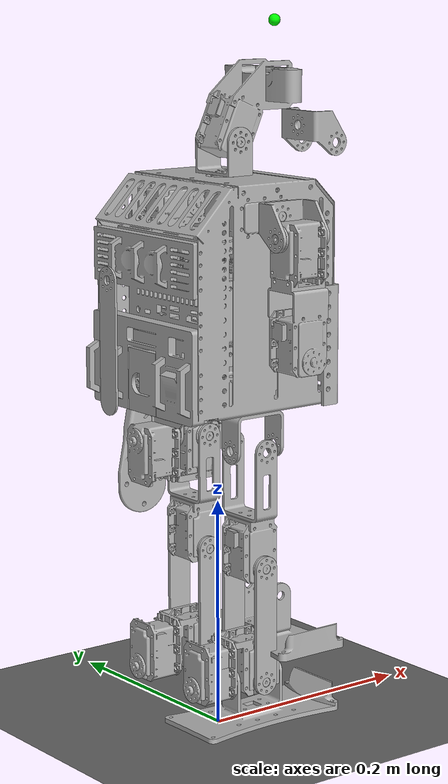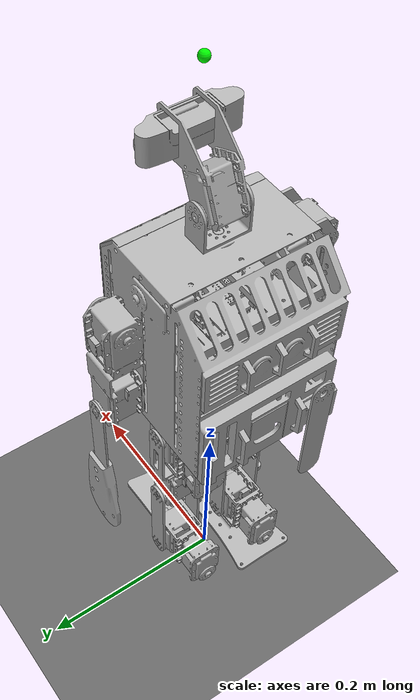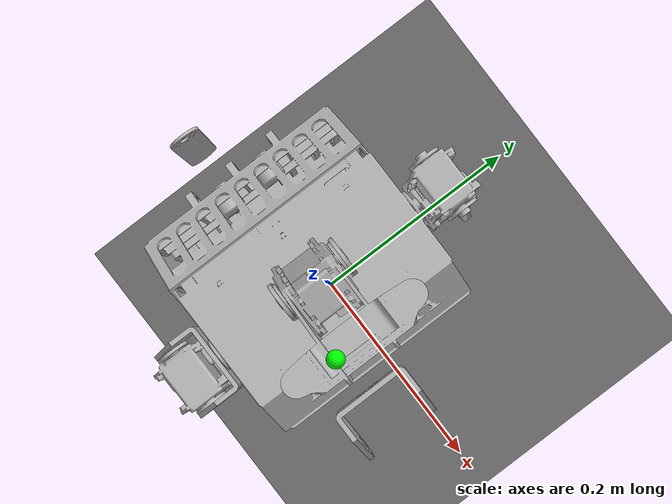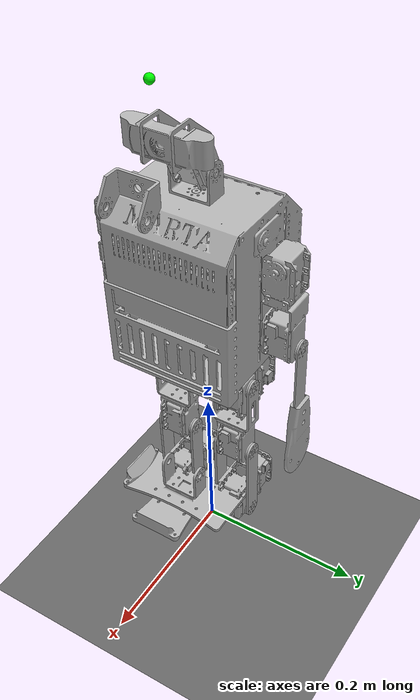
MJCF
<mujoco model="martha">
  <option iterations="50" timestep="0.001" solver="PGS" gravity="0 0 -9.81" />

  <compiler angle="radian" meshdir="meshes" eulerseq="zyx" autolimits="true" />

  <default>
    <joint limited="true" damping="0.01" armature="0.01" frictionloss="0.01" />
    <geom condim="4" contype="1" conaffinity="15" friction="0.9 0.2 0.2" solref="0.001 2" />
    <motor ctrllimited="true" />
    <equality solref="0.001 2" />
    <default class="visualgeom">
      <geom material="visualgeom" condim="1" contype="0" conaffinity="0" />
    </default>
  </default>

  <asset>
    <mesh name="base_link" file="base_link.stl" scale="0.001 0.001 0.001" />
    <mesh name="r_shoulder_1" file="r_shoulder_1.stl" scale="0.001 0.001 0.001" />
    <mesh name="l_shoulder_1" file="l_shoulder_1.stl" scale="0.001 0.001 0.001" />
    <mesh name="r_arm_1" file="r_arm_1.stl" scale="0.001 0.001 0.001" />
    <mesh name="l_arm_1" file="l_arm_1.stl" scale="0.001 0.001 0.001" />
    <mesh name="neck_1" file="neck_1.stl" scale="0.001 0.001 0.001" />
    <mesh name="head_1" file="head_1.stl" scale="0.001 0.001 0.001" />
    <mesh name="l_hand_1" file="l_hand_1.stl" scale="0.001 0.001 0.001" />
    <mesh name="r_hand_1" file="r_hand_1.stl" scale="0.001 0.001 0.001" />
    <mesh name="l_hip_1" file="l_hip_1.stl" scale="0.001 0.001 0.001" />
    <mesh name="r_hip_1" file="r_hip_1.stl" scale="0.001 0.001 0.001" />
    <mesh name="l_waist_1" file="l_waist_1.stl" scale="0.001 0.001 0.001" />
    <mesh name="r_waist_1" file="r_waist_1.stl" scale="0.001 0.001 0.001" />
    <mesh name="r_thigh_1" file="r_thigh_1.stl" scale="0.001 0.001 0.001" />
    <mesh name="l_thigh_1" file="l_thigh_1.stl" scale="0.001 0.001 0.001" />
    <mesh name="l_shin_1" file="l_shin_1.stl" scale="0.001 0.001 0.001" />
    <mesh name="r_shin_1" file="r_shin_1.stl" scale="0.001 0.001 0.001" />
    <mesh name="r_ankle_1" file="r_ankle_1.stl" scale="0.001 0.001 0.001" />
    <mesh name="l_ankle_1" file="l_ankle_1.stl" scale="0.001 0.001 0.001" />
    <mesh name="l_feet_1" file="l_feet_1.stl" scale="0.001 0.001 0.001" />
    <mesh name="r_feet_1" file="r_feet_1.stl" scale="0.001 0.001 0.001" />
    <texture name="texplane" type="2d" builtin="checker" rgb1=".0 .0 .0" rgb2=".8 .8 .8" width="100" height="100" />
    <material name="matplane" reflectance="0." texture="texplane" texrepeat="1 1" texuniform="true" />
    <material name="visualgeom" rgba="0.5 0.9 0.2 1" />
  </asset>

  <worldbody>
    <light directional="true" diffuse="0.4 0.4 0.4" specular="0.1 0.1 0.1" pos="0 0 5.0" dir="0 0 -1" castshadow="false" />
    <light directional="true" diffuse="0.6 0.6 0.6" specular="0.2 0.2 0.2" pos="0 0 4" dir="0 0 -1" />
    <geom name="ground" type="plane" pos="0 0 0" size="100 100 0.001" quat="1 0 0 0" material="matplane" condim="3" conaffinity="15" />
    <camera name="fixed" pos="0 -3.0 0.8566949259501146" xyaxes="1 0 0 0 0 1" />
    <camera name="track" mode="trackcom" pos="0 -3.0 0.8566949259501146" xyaxes="1 0 0 0 0 1" />
    <camera name="head_camera" site="camera_site" mode="fixed" resolution="640 480" fovy="80" near="0.02" far="300"/>
    <body name="root" pos="0 0 0.35669492595011465" quat="1 0 0 0">
      <freejoint name="root" />
      <site name="imu" size="0.01" pos="0 0 0" />
      <geom type="mesh" rgba="0.7 0.7 0.7 1" mesh="base_link" contype="1" conaffinity="0" density="0" group="1" class="visualgeom" />
      <geom type="mesh" rgba="0.7 0.7 0.7 1" mesh="base_link" />
      <body name="r_shoulder_1" pos="-0.075737 -0.013299 0.16273">
        <inertial pos="-0.0103128 1.00656e-07 -0.00339218" quat="0.653281 0.653281 0.270598 -0.270598" mass="0.0616086" diaginertia="3.1e-05 2.7e-05 1.1e-05" />
        <joint name="r_sho_pitch_link" pos="0 0 0" axis="-1 0 0" range="-3.14159 3.14159" actuatorfrcrange="-1000 1000" />
        <geom pos="0.075737 0.013299 -0.16273" quat="1 0 0 0" type="mesh" rgba="0.7 0.7 0.7 1" mesh="r_shoulder_1" contype="1" conaffinity="0" density="0" group="1" class="visualgeom" />
        <geom type="mesh" rgba="0.7 0.7 0.7 1" mesh="r_shoulder_1" pos="0.075737 0.013299 -0.16273" quat="1 0 0 0" />
        <body name="r_arm_1" pos="-0.023 0.021 -0.0145">
          <inertial pos="1.93472e-05 -0.0207344 -0.0491273" quat="0.382682 -0.00248387 0.00102887 0.923876" mass="0.202062" diaginertia="0.000302008 0.000302 3.89924e-05" />
          <joint name="r_sho_roll_link" pos="0 0 0" axis="0 1 0" range="-3.14159 3.14159" actuatorfrcrange="-1000 1000" />
          <geom pos="0.098737 -0.007701 -0.14823" quat="1 0 0 0" type="mesh" rgba="0.7 0.7 0.7 1" mesh="r_arm_1" contype="1" conaffinity="0" density="0" group="1" class="visualgeom" />
          <geom type="mesh" rgba="0.7 0.7 0.7 1" mesh="r_arm_1" pos="0.098737 -0.007701 -0.14823" quat="1 0 0 0" />
          <body name="r_hand_1" pos="-0.02075 -0.02076 -0.0996">
            <inertial pos="-0.00100024 1.00656e-07 -0.0515581" mass="0.0210013" diaginertia="2.4e-05 2.3e-05 1e-06" />
            <joint name="r_el_link" pos="0 0 0" axis="1 0 0" range="-3.14159 3.14159" actuatorfrcrange="-1000 1000" />
            <geom pos="0.119487 0.013059 -0.04863" type="mesh" rgba="0.7 0.7 0.7 1" mesh="r_hand_1" contype="1" conaffinity="0" density="0" group="1" class="visualgeom" />
            <geom type="mesh" rgba="0.7 0.7 0.7 1" mesh="r_hand_1" pos="0.119487 0.013059 -0.04863" />
          </body>
        </body>
      </body>
      <body name="l_shoulder_1" pos="0.075763 -0.013299 0.16273">
        <inertial pos="0.0103123 1.00656e-07 -0.00339218" quat="0.653281 0.653281 -0.270598 0.270598" mass="0.0616086" diaginertia="3.1e-05 2.7e-05 1.1e-05" />
        <joint name="l_sho_pitch_link" pos="0 0 0" axis="1 0 0" range="-3.14159 3.14159" actuatorfrcrange="-1000 1000" />
        <geom pos="-0.075763 0.013299 -0.16273" quat="1 0 0 0" type="mesh" rgba="0.7 0.7 0.7 1" mesh="l_shoulder_1" contype="1" conaffinity="0" density="0" group="1" class="visualgeom" />
        <geom type="mesh" rgba="0.7 0.7 0.7 1" mesh="l_shoulder_1" pos="-0.075763 0.013299 -0.16273" quat="1 0 0 0" />
        <body name="l_arm_1" pos="0.023 0.021 -0.0145">
          <inertial pos="1.93472e-05 -0.0207344 -0.0491273" quat="0.382682 -0.00248387 0.00102887 0.923876" mass="0.202062" diaginertia="0.000302008 0.000302 3.89924e-05" />
          <joint name="l_sho_roll_link" pos="0 0 0" axis="0 1 0" range="-3.14159 3.14159" actuatorfrcrange="-1000 1000" />
          <geom pos="-0.098763 -0.007701 -0.14823" quat="1 0 0 0" type="mesh" rgba="0.7 0.7 0.7 1" mesh="l_arm_1" contype="1" conaffinity="0" density="0" group="1" class="visualgeom" />
          <geom type="mesh" rgba="0.7 0.7 0.7 1" mesh="l_arm_1" pos="-0.098763 -0.007701 -0.14823" quat="1 0 0 0" />
          <body name="l_hand_1" pos="0.02075 -0.02076 -0.0996">
            <inertial pos="0.000999758 1.00656e-07 -0.0515581" mass="0.0210013" diaginertia="2.4e-05 2.3e-05 1e-06" />
            <joint name="l_el_link" pos="0 0 0" axis="1 0 0" range="-3.14159 3.14159" actuatorfrcrange="-1000 1000" />
            <geom pos="-0.119513 0.013059 -0.04863" type="mesh" rgba="0.7 0.7 0.7 1" mesh="l_hand_1" contype="1" conaffinity="0" density="0" group="1" class="visualgeom" />
            <geom type="mesh" rgba="0.7 0.7 0.7 1" mesh="l_hand_1" pos="-0.119513 0.013059 -0.04863" />
          </body>
        </body>
      </body>
      <body name="neck_1" pos="1.3e-05 -0.013499 0.191301">
        <inertial pos="-2.57555e-07 1.00656e-07 0.0118456" quat="0.5 0.5 0.5 0.5" mass="0.0200002" diaginertia="1e-05 8e-06 4e-06" />
        <joint name="head_pan_link" pos="0 0 0" axis="0 0 1" range="-3.14159 3.14159" actuatorfrcrange="-1000 1000" />
        <geom pos="-1.3e-05 0.013499 -0.191301" quat="1 0 0 0" type="mesh" rgba="0.7 0.7 0.7 1" mesh="neck_1" contype="1" conaffinity="0" density="0" group="1" class="visualgeom" />
        <geom type="mesh" rgba="0.7 0.7 0.7 1" mesh="neck_1" pos="-1.3e-05 0.013499 -0.191301" quat="1 0 0 0" />
        <site
        name="camera_site"
        pos="0.05 0 0.06"
        quat="1 0 0 0"
        size="0.005"
        rgba="0 1 0 1"/>
        <body name="head_1" pos="0.021 0 0.029">
          <inertial pos="-0.0207259 -0.0231953 0.0274494" quat="0.651578 0.274675 -0.274675 0.651578" mass="0.162245" diaginertia="0.000190519 0.000142 7.04813e-05" />
          <joint name="head_tilt_link" pos="0 0 0" axis="1 0 0" range="-3.14159 3.14159" actuatorfrcrange="-1000 1000" />
          <geom pos="-0.021013 0.013499 -0.220301" quat="1 0 0 0" type="mesh" rgba="0.7 0.7 0.7 1" mesh="head_1" contype="1" conaffinity="0" density="0" group="1" class="visualgeom" />
          <geom type="mesh" rgba="0.7 0.7 0.7 1" mesh="head_1" pos="-0.021013 0.013499 -0.220301" quat="1 0 0 0" />
        </body>
      </body>
      <body name="l_hip_1" pos="0.040013 -0.013499 -0.00575">
        <inertial pos="-2.42034e-07 0.00145206 -0.0157858" quat="0.771073 0.636747 0 0" mass="0.0222589" diaginertia="1.3e-05 1.01926e-05 4.80742e-06" />
        <joint name="l_hip_yaw_link" pos="0 0 0" axis="0 0 -1" range="-3.14159 3.14159" actuatorfrcrange="-1000 1000" />
        <geom pos="-0.040013 0.013499 0.00575" quat="1 0 0 0" type="mesh" rgba="0.7 0.7 0.7 1" mesh="l_hip_1" contype="1" conaffinity="0" density="0" group="1" class="visualgeom" />
        <geom type="mesh" rgba="0.7 0.7 0.7 1" mesh="l_hip_1" pos="-0.040013 0.013499 0.00575" quat="1 0 0 0" />
        <body name="l_waist_1" pos="0 0.02215 -0.034">
          <inertial pos="1.35613e-05 -0.001402 -0.0123778" quat="0.707107 0.707107 0 0" mass="0.187567" diaginertia="0.000141 0.000124 5.5e-05" />
          <joint name="l_hip_roll_link" pos="0 0 0" axis="0 -1 0" range="-3.14159 3.14159" actuatorfrcrange="-1000 1000" />
          <geom pos="-0.040013 -0.008651 0.03975" quat="1 0 0 0" type="mesh" rgba="0.7 0.7 0.7 1" mesh="l_waist_1" contype="1" conaffinity="0" density="0" group="1" class="visualgeom" />
          <geom type="mesh" rgba="0.7 0.7 0.7 1" mesh="l_waist_1" pos="-0.040013 -0.008651 0.03975" quat="1 0 0 0" />
          <body name="l_thigh_1" pos="-0.0226 -0.01945 0">
            <inertial pos="0.0230774 1.03185e-07 -0.0755478" quat="0.707107 0 0 0.707107" mass="0.115577" diaginertia="0.000113 9.9e-05 2.7e-05" />
            <joint name="l_hip_pitch_link" pos="0 0 0" axis="-1 0 0" range="-3.14159 3.14159" actuatorfrcrange="-1000 1000" />
            <geom pos="-0.017413 0.010799 0.03975" quat="1 0 0 0" type="mesh" rgba="0.7 0.7 0.7 1" mesh="l_thigh_1" contype="1" conaffinity="0" density="0" group="1" class="visualgeom" />
            <geom type="mesh" rgba="0.7 0.7 0.7 1" mesh="l_thigh_1" pos="-0.017413 0.010799 0.03975" quat="1 0 0 0" />
            <body name="l_shin_1" pos="0.00235 0 -0.1005">
              <inertial pos="0.0207498 -0.00324835 -0.0557923" quat="0.706925 0.0160252 -0.0160252 0.706925" mass="0.035816" diaginertia="6.20907e-05 4.9e-05 1.79093e-05" />
              <joint name="l_knee_link" pos="0 0 0" axis="1 0 0" range="-3.14159 3.14159" actuatorfrcrange="-1000 1000" />
              <geom pos="-0.019763 0.010799 0.14025" quat="1 0 0 0" type="mesh" rgba="0.7 0.7 0.7 1" mesh="l_shin_1" contype="1" conaffinity="0" density="0" group="1" class="visualgeom" />
              <geom type="mesh" rgba="0.7 0.7 0.7 1" mesh="l_shin_1" pos="-0.019763 0.010799 0.14025" quat="1 0 0 0" />
              <body name="l_ankle_1" pos="0.04335 0 -0.100025">
                <inertial pos="-0.022614 0.018048 0.0123782" quat="0.707107 0.707107 0 0" mass="0.187567" diaginertia="0.000141 0.000124 5.5e-05" />
                <joint name="l_ank_pitch_link" pos="0 0 0" axis="-1 0 0" range="-3.14159 3.14159" actuatorfrcrange="-1000 1000" />
                <geom pos="-0.063113 0.010799 0.240275" quat="1 0 0 0" type="mesh" rgba="0.7 0.7 0.7 1" mesh="l_ankle_1" contype="1" conaffinity="0" density="0" group="1" class="visualgeom" />
                <geom type="mesh" rgba="0.7 0.7 0.7 1" mesh="l_ankle_1" pos="-0.063113 0.010799 0.240275" quat="1 0 0 0" />
                <body name="l_feet_1" pos="-0.0226 -0.0227 0">
                  <inertial pos="-2.48628e-07 0.0140152 -0.0321863" quat="0.502597 0.497389 -0.497389 0.502597" mass="0.0700338" diaginertia="0.00012101 0.000114 2.49896e-05" />
                  <joint name="l_ank_roll_link" pos="0 0 0" axis="0 -1 0" range="-3.14159 3.14159" actuatorfrcrange="-1000 1000" />
                  <geom pos="-0.040513 0.033499 0.240275" quat="1 0 0 0" type="mesh" rgba="0.7 0.7 0.7 1" mesh="l_feet_1" contype="1" conaffinity="0" density="0" group="1" class="visualgeom" />
                  <geom type="mesh" rgba="0.7 0.7 0.7 1" mesh="l_feet_1" pos="-0.040513 0.033499 0.240275" quat="1 0 0 0" />
                </body>
              </body>
            </body>
          </body>
        </body>
      </body>
      <body name="r_hip_1" pos="-0.039987 -0.013499 -0.00575">
        <inertial pos="-2.42034e-07 0.00145206 -0.0157858" quat="0.771073 0.636747 0 0" mass="0.0222589" diaginertia="1.3e-05 1.01926e-05 4.80742e-06" />
        <joint name="r_hip_yaw_link" pos="0 0 0" axis="0 0 -1" range="-3.14159 3.14159" actuatorfrcrange="-1000 1000" />
        <geom pos="0.039987 0.013499 0.00575" quat="1 0 0 0" type="mesh" rgba="0.7 0.7 0.7 1" mesh="r_hip_1" contype="1" conaffinity="0" density="0" group="1" class="visualgeom" />
        <geom type="mesh" rgba="0.7 0.7 0.7 1" mesh="r_hip_1" pos="0.039987 0.013499 0.00575" quat="1 0 0 0" />
        <body name="r_waist_1" pos="0 0.02215 -0.034">
          <inertial pos="1.35613e-05 -0.001402 -0.0123778" quat="0.707107 0.707107 0 0" mass="0.187567" diaginertia="0.000141 0.000124 5.5e-05" />
          <joint name="r_hip_roll_link" pos="0 0 0" axis="0 -1 0" range="-3.14159 3.14159" actuatorfrcrange="-1000 1000" />
          <geom pos="0.039987 -0.008651 0.03975" quat="1 0 0 0" type="mesh" rgba="0.7 0.7 0.7 1" mesh="r_waist_1" contype="1" conaffinity="0" density="0" group="1" class="visualgeom" />
          <geom type="mesh" rgba="0.7 0.7 0.7 1" mesh="r_waist_1" pos="0.039987 -0.008651 0.03975" quat="1 0 0 0" />
          <body name="r_thigh_1" pos="-0.0226 -0.01945 0">
            <inertial pos="0.0230774 1.03185e-07 -0.0755478" quat="0.707107 0 0 0.707107" mass="0.115577" diaginertia="0.000113 9.9e-05 2.7e-05" />
            <joint name="r_hip_pitch_link" pos="0 0 0" axis="-1 0 0" range="-3.14159 3.14159" actuatorfrcrange="-1000 1000" />
            <geom pos="0.062587 0.010799 0.03975" quat="1 0 0 0" type="mesh" rgba="0.7 0.7 0.7 1" mesh="r_thigh_1" contype="1" conaffinity="0" density="0" group="1" class="visualgeom" />
            <geom type="mesh" rgba="0.7 0.7 0.7 1" mesh="r_thigh_1" pos="0.062587 0.010799 0.03975" quat="1 0 0 0" />
            <body name="r_shin_1" pos="0.00235 0 -0.1005">
              <inertial pos="0.0207498 -0.00324835 -0.0557923" quat="0.706925 0.0160252 -0.0160252 0.706925" mass="0.035816" diaginertia="6.20907e-05 4.9e-05 1.79093e-05" />
              <joint name="r_knee_link" pos="0 0 0" axis="1 0 0" range="-3.14159 3.14159" actuatorfrcrange="-1000 1000" />
              <geom pos="0.060237 0.010799 0.14025" quat="1 0 0 0" type="mesh" rgba="0.7 0.7 0.7 1" mesh="r_shin_1" contype="1" conaffinity="0" density="0" group="1" class="visualgeom" />
              <geom type="mesh" rgba="0.7 0.7 0.7 1" mesh="r_shin_1" pos="0.060237 0.010799 0.14025" quat="1 0 0 0" />
              <body name="r_ankle_1" pos="0.04335 0 -0.100025">
                <inertial pos="-0.022614 0.018048 0.0123782" quat="0.707107 0.707107 0 0" mass="0.187567" diaginertia="0.000141 0.000124 5.5e-05" />
                <joint name="r_ank_pitch_link" pos="0 0 0" axis="-1 0 0" range="-3.14159 3.14159" actuatorfrcrange="-1000 1000" />
                <geom pos="0.016887 0.010799 0.240275" quat="1 0 0 0" type="mesh" rgba="0.7 0.7 0.7 1" mesh="r_ankle_1" contype="1" conaffinity="0" density="0" group="1" class="visualgeom" />
                <geom type="mesh" rgba="0.7 0.7 0.7 1" mesh="r_ankle_1" pos="0.016887 0.010799 0.240275" quat="1 0 0 0" />
                <body name="r_feet_1" pos="-0.0226 -0.0227 0">
                  <inertial pos="-2.48628e-07 0.0140152 -0.0321863" quat="0.502597 0.497389 -0.497389 0.502597" mass="0.0700338" diaginertia="0.00012101 0.000114 2.49896e-05" />
                  <joint name="r_ank_roll_link" pos="0 0 0" axis="0 -1 0" range="-3.14159 3.14159" actuatorfrcrange="-1000 1000" />
                  <geom pos="0.039487 0.033499 0.240275" quat="1 0 0 0" type="mesh" rgba="0.7 0.7 0.7 1" mesh="r_feet_1" contype="1" conaffinity="0" density="0" group="1" class="visualgeom" />
                  <geom type="mesh" rgba="0.7 0.7 0.7 1" mesh="r_feet_1" pos="0.039487 0.033499 0.240275" quat="1 0 0 0" />
                </body>
              </body>
            </body>
          </body>
        </body>
      </body>
    </body>
  </worldbody>

  <actuator>
    <motor name="r_sho_pitch_link" joint="r_sho_pitch_link" ctrllimited="true" ctrlrange="-1000 1000" gear="1" />
    <motor name="r_sho_roll_link" joint="r_sho_roll_link" ctrllimited="true" ctrlrange="-1000 1000" gear="1" />
    <motor name="r_el_link" joint="r_el_link" ctrllimited="true" ctrlrange="-1000 1000" gear="1" />
    <motor name="l_sho_pitch_link" joint="l_sho_pitch_link" ctrllimited="true" ctrlrange="-1000 1000" gear="1" />
    <motor name="l_sho_roll_link" joint="l_sho_roll_link" ctrllimited="true" ctrlrange="-1000 1000" gear="1" />
    <motor name="l_el_link" joint="l_el_link" ctrllimited="true" ctrlrange="-1000 1000" gear="1" />
    <motor name="head_pan_link" joint="head_pan_link" ctrllimited="true" ctrlrange="-1000 1000" gear="1" />
    <motor name="head_tilt_link" joint="head_tilt_link" ctrllimited="true" ctrlrange="-1000 1000" gear="1" />
    <motor name="l_hip_yaw_link" joint="l_hip_yaw_link" ctrllimited="true" ctrlrange="-1000 1000" gear="1" />
    <motor name="l_hip_roll_link" joint="l_hip_roll_link" ctrllimited="true" ctrlrange="-1000 1000" gear="1" />
    <motor name="l_hip_pitch_link" joint="l_hip_pitch_link" ctrllimited="true" ctrlrange="-1000 1000" gear="1" />
    <motor name="l_knee_link" joint="l_knee_link" ctrllimited="true" ctrlrange="-1000 1000" gear="1" />
    <motor name="l_ank_pitch_link" joint="l_ank_pitch_link" ctrllimited="true" ctrlrange="-1000 1000" gear="1" />
    <motor name="l_ank_roll_link" joint="l_ank_roll_link" ctrllimited="true" ctrlrange="-1000 1000" gear="1" />
    <motor name="r_hip_yaw_link" joint="r_hip_yaw_link" ctrllimited="true" ctrlrange="-1000 1000" gear="1" />
    <motor name="r_hip_roll_link" joint="r_hip_roll_link" ctrllimited="true" ctrlrange="-1000 1000" gear="1" />
    <motor name="r_hip_pitch_link" joint="r_hip_pitch_link" ctrllimited="true" ctrlrange="-1000 1000" gear="1" />
    <motor name="r_knee_link" joint="r_knee_link" ctrllimited="true" ctrlrange="-1000 1000" gear="1" />
    <motor name="r_ank_pitch_link" joint="r_ank_pitch_link" ctrllimited="true" ctrlrange="-1000 1000" gear="1" />
    <motor name="r_ank_roll_link" joint="r_ank_roll_link" ctrllimited="true" ctrlrange="-1000 1000" gear="1" />
  </actuator>

  <sensor>
    <actuatorpos name="r_sho_pitch_link_p" actuator="r_sho_pitch_link" />
    <actuatorvel name="r_sho_pitch_link_v" actuator="r_sho_pitch_link" />
    <actuatorfrc name="r_sho_pitch_link_f" actuator="r_sho_pitch_link" noise="0.001" />
    <actuatorpos name="r_sho_roll_link_p" actuator="r_sho_roll_link" />
    <actuatorvel name="r_sho_roll_link_v" actuator="r_sho_roll_link" />
    <actuatorfrc name="r_sho_roll_link_f" actuator="r_sho_roll_link" noise="0.001" />
    <actuatorpos name="r_el_link_p" actuator="r_el_link" />
    <actuatorvel name="r_el_link_v" actuator="r_el_link" />
    <actuatorfrc name="r_el_link_f" actuator="r_el_link" noise="0.001" />
    <actuatorpos name="l_sho_pitch_link_p" actuator="l_sho_pitch_link" />
    <actuatorvel name="l_sho_pitch_link_v" actuator="l_sho_pitch_link" />
    <actuatorfrc name="l_sho_pitch_link_f" actuator="l_sho_pitch_link" noise="0.001" />
    <actuatorpos name="l_sho_roll_link_p" actuator="l_sho_roll_link" />
    <actuatorvel name="l_sho_roll_link_v" actuator="l_sho_roll_link" />
    <actuatorfrc name="l_sho_roll_link_f" actuator="l_sho_roll_link" noise="0.001" />
    <actuatorpos name="l_el_link_p" actuator="l_el_link" />
    <actuatorvel name="l_el_link_v" actuator="l_el_link" />
    <actuatorfrc name="l_el_link_f" actuator="l_el_link" noise="0.001" />
    <actuatorpos name="head_pan_link_p" actuator="head_pan_link" />
    <actuatorvel name="head_pan_link_v" actuator="head_pan_link" />
    <actuatorfrc name="head_pan_link_f" actuator="head_pan_link" noise="0.001" />
    <actuatorpos name="head_tilt_link_p" actuator="head_tilt_link" />
    <actuatorvel name="head_tilt_link_v" actuator="head_tilt_link" />
    <actuatorfrc name="head_tilt_link_f" actuator="head_tilt_link" noise="0.001" />
    <actuatorpos name="l_hip_yaw_link_p" actuator="l_hip_yaw_link" />
    <actuatorvel name="l_hip_yaw_link_v" actuator="l_hip_yaw_link" />
    <actuatorfrc name="l_hip_yaw_link_f" actuator="l_hip_yaw_link" noise="0.001" />
    <actuatorpos name="l_hip_roll_link_p" actuator="l_hip_roll_link" />
    <actuatorvel name="l_hip_roll_link_v" actuator="l_hip_roll_link" />
    <actuatorfrc name="l_hip_roll_link_f" actuator="l_hip_roll_link" noise="0.001" />
    <actuatorpos name="l_hip_pitch_link_p" actuator="l_hip_pitch_link" />
    <actuatorvel name="l_hip_pitch_link_v" actuator="l_hip_pitch_link" />
    <actuatorfrc name="l_hip_pitch_link_f" actuator="l_hip_pitch_link" noise="0.001" />
    <actuatorpos name="l_knee_link_p" actuator="l_knee_link" />
    <actuatorvel name="l_knee_link_v" actuator="l_knee_link" />
    <actuatorfrc name="l_knee_link_f" actuator="l_knee_link" noise="0.001" />
    <actuatorpos name="l_ank_pitch_link_p" actuator="l_ank_pitch_link" />
    <actuatorvel name="l_ank_pitch_link_v" actuator="l_ank_pitch_link" />
    <actuatorfrc name="l_ank_pitch_link_f" actuator="l_ank_pitch_link" noise="0.001" />
    <actuatorpos name="l_ank_roll_link_p" actuator="l_ank_roll_link" />
    <actuatorvel name="l_ank_roll_link_v" actuator="l_ank_roll_link" />
    <actuatorfrc name="l_ank_roll_link_f" actuator="l_ank_roll_link" noise="0.001" />
    <actuatorpos name="r_hip_yaw_link_p" actuator="r_hip_yaw_link" />
    <actuatorvel name="r_hip_yaw_link_v" actuator="r_hip_yaw_link" />
    <actuatorfrc name="r_hip_yaw_link_f" actuator="r_hip_yaw_link" noise="0.001" />
    <actuatorpos name="r_hip_roll_link_p" actuator="r_hip_roll_link" />
    <actuatorvel name="r_hip_roll_link_v" actuator="r_hip_roll_link" />
    <actuatorfrc name="r_hip_roll_link_f" actuator="r_hip_roll_link" noise="0.001" />
    <actuatorpos name="r_hip_pitch_link_p" actuator="r_hip_pitch_link" />
    <actuatorvel name="r_hip_pitch_link_v" actuator="r_hip_pitch_link" />
    <actuatorfrc name="r_hip_pitch_link_f" actuator="r_hip_pitch_link" noise="0.001" />
    <actuatorpos name="r_knee_link_p" actuator="r_knee_link" />
    <actuatorvel name="r_knee_link_v" actuator="r_knee_link" />
    <actuatorfrc name="r_knee_link_f" actuator="r_knee_link" noise="0.001" />
    <actuatorpos name="r_ank_pitch_link_p" actuator="r_ank_pitch_link" />
    <actuatorvel name="r_ank_pitch_link_v" actuator="r_ank_pitch_link" />
    <actuatorfrc name="r_ank_pitch_link_f" actuator="r_ank_pitch_link" noise="0.001" />
    <actuatorpos name="r_ank_roll_link_p" actuator="r_ank_roll_link" />
    <actuatorvel name="r_ank_roll_link_v" actuator="r_ank_roll_link" />
    <actuatorfrc name="r_ank_roll_link_f" actuator="r_ank_roll_link" noise="0.001" />
    <framequat name="orientation" objtype="site" noise="0.001" objname="imu" />
    <gyro name="angular-velocity" site="imu" noise="0.005" cutoff="34.9" />
  </sensor>
</mujoco>
